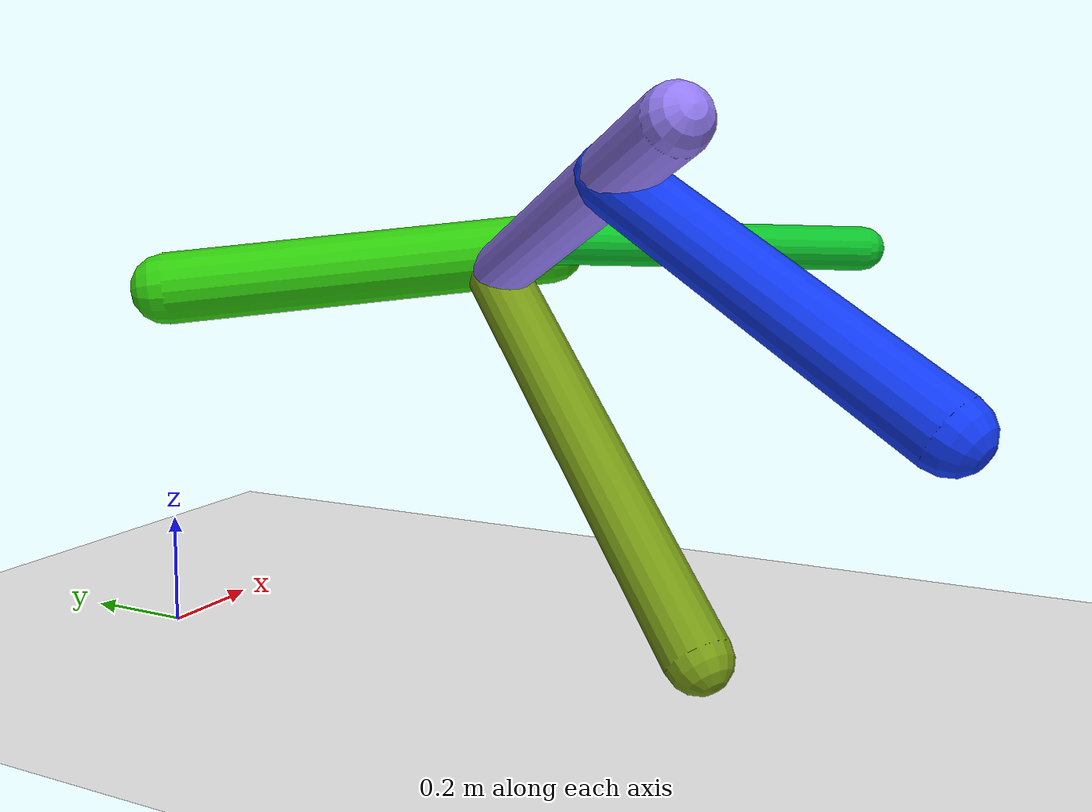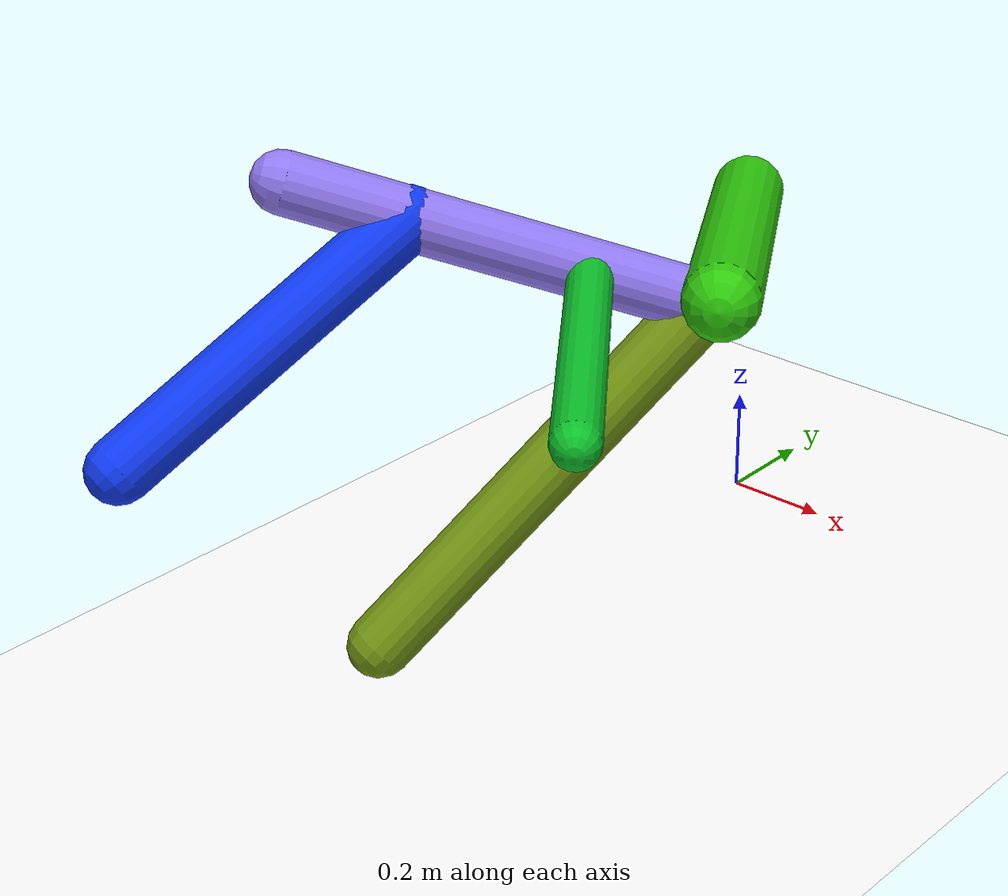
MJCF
<mujoco model="morphology">
  <option timestep="0.01"/>
  <default>
    <default class="/"/>
    <default class="0/"/>
    <default class="0/1/"/>
    <default class="0/1/2/"/>
    <default class="0/1/2/3/"/>
    <default class="0/1/2/4/"/>
  </default>
  <asset>
    <texture name="texplane" type="2d" builtin="checker" rgb1="0.10000000000000001 0.20000000000000001 0.29999999999999999" rgb2="0.20000000000000001 0.29999999999999999 0.40000000000000002" width="300" height="300"/>
    <material name="MatPlane" class="/" texture="texplane" texrepeat="20 20" specular="1" shininess="1" reflectance="0.5"/>
  </asset>
  <worldbody>
    <light name="//unnamed_light_0" class="/" directional="true" pos="0 0 1.5" dir="0 0 -1.3" cutoff="100" exponent="1" diffuse="1 1 1" specular="0.10000000000000001 0.10000000000000001 0.10000000000000001"/>
    <geom name="ground" class="/" type="plane" size="15 15 0.5" material="MatPlane" rgba="1 1 1 1"/>
    <site name="body" class="/" size="9.9999999999999995e-07 9.9999999999999995e-07 9.9999999999999995e-07" pos="0 0 0.63740447759628294"/>
    <body pos="0 0 0.63740447759628294" name="0/">
      <freejoint name="0/"/>
      <geom name="0/geom" class="0/" type="capsule" contype="1" conaffinity="1" condim="3" size="0.066940035385578384" rgba="0.18295940248163589 0.78629385805449015 0.04518887498872981 1" friction="0.59999999999999998 0.10000000000000001 0.10000000000000001" fromto="0 0 0 0.38911594732202492 -0.60193040110446483 0.072690725287960611"/>
      <site name="0/end0" class="0/" size="0.0050000000000000001" pos="0.38911594732202492 -0.60193040110446483 0.072690725287960611"/>
      <site name="0/attach1" class="0/" size="9.9999999999999995e-07 9.9999999999999995e-07 9.9999999999999995e-07" pos="0.32415600286603885 -0.50144270407940328 0.060555562209528777"/>
      <body pos="0.32415600286603885 -0.50144270407940328 0.060555562209528777" name="0/1/">
        <geom name="0/1/geom" class="0/1/" type="capsule" contype="1" conaffinity="1" condim="3" size="0.056833393159811216" rgba="0.45765088950171162 0.59437888705679753 0.075772124908265348 1" friction="0.59999999999999998 0.10000000000000001 0.10000000000000001" fromto="0 0 0 -0.31927811688564089 -0.52689643511817352 -0.59796001138442878"/>
        <site name="0/1/end1" class="0/1/" size="0.0050000000000000001" pos="-0.31927811688564089 -0.52689643511817352 -0.59796001138442878"/>
        <site name="0/1/attach2" class="0/1/" size="9.9999999999999995e-07 9.9999999999999995e-07 9.9999999999999995e-07" pos="-0.018821005924840033 -0.03105982027164176 -0.035248920367175626"/>
        <body pos="-0.018821005924840033 -0.03105982027164176 -0.035248920367175626" name="0/1/2/">
          <joint name="0/1/2/joint/" class="0/1/" type="hinge" axis="-1.1102230246251565e-16 -0.75028297488036522 0.66111682598816812" limited="true" range="-69.943050882198065 69.943050882198065"/>
          <geom name="0/1/2/geom" class="0/1/2/" type="capsule" contype="1" conaffinity="1" condim="3" size="0.053663761552241257" rgba="0.57061766330046837 0.47878538322192654 0.95011221425135772 1" friction="0.59999999999999998 0.10000000000000001 0.10000000000000001" fromto="0 0 0 -0.47835869207426979 -0.50005319227406531 0.2366482780507404"/>
          <site name="0/1/2/end2" class="0/1/2/" size="0.0050000000000000001" pos="-0.47835869207426979 -0.50005319227406531 0.2366482780507404"/>
          <site name="0/1/2/attach3" class="0/1/2/" size="9.9999999999999995e-07 9.9999999999999995e-07 9.9999999999999995e-07" pos="-0.34015348881826163 -0.35558011334374046 0.16827694099743776"/>
          <body pos="-0.34015348881826163 -0.35558011334374046 0.16827694099743776" name="0/1/2/3/">
            <joint name="0/1/2/3/joint/" class="0/1/2/" type="hinge" axis="0.75643378070781442 -0.59120820823325604 0.27978704387749148" limited="true" range="-60.759061335397398 60.759061335397398"/>
            <geom name="0/1/2/3/geom" class="0/1/2/3/" type="capsule" contype="1" conaffinity="1" condim="3" size="0.055662850751110257" rgba="0.061152742468714716 0.22802673533128692 0.94823918525899809 1" friction="0.59999999999999998 0.10000000000000001 0.10000000000000001" fromto="0 0 0 -0.1544519049338543 -0.50489109339782789 -0.31659072734898924"/>
            <site name="0/1/2/3/end3" class="0/1/2/3/" size="0.0050000000000000001" pos="-0.1544519049338543 -0.50489109339782789 -0.31659072734898924"/>
          </body>
          <site name="0/1/2/attach4" class="0/1/2/" size="9.9999999999999995e-07 9.9999999999999995e-07 9.9999999999999995e-07" pos="-0.13407827534725927 -0.14015898678723815 0.066329709296921585"/>
          <body pos="-0.13407827534725927 -0.14015898678723815 0.066329709296921585" name="0/1/2/4/">
            <joint name="0/1/2/4/joint/" class="0/1/2/" type="hinge" axis="0.75643378070781442 -0.59120820823325604 0.27978704387749148" limited="true" range="-48.518903931756881 48.518903931756881"/>
            <geom name="0/1/2/4/geom" class="0/1/2/4/" type="capsule" contype="1" conaffinity="1" condim="3" size="0.039247731975921026" rgba="0.045801742172864923 0.75544132584735191 0.16596425806382553 1" friction="0.59999999999999998 0.10000000000000001 0.10000000000000001" fromto="0 0 0 0.37436261976652063 -0.47527045575302324 -0.016159482445258"/>
            <site name="0/1/2/4/end4" class="0/1/2/4/" size="0.0050000000000000001" pos="0.37436261976652063 -0.47527045575302324 -0.016159482445258"/>
          </body>
        </body>
      </body>
      <camera name="0/iso" class="0/" mode="trackcom" pos="-2.2999999999999998 -2.2999999999999998 1" xyaxes="0.45000000000000001 -0.45000000000000001 0 0.29999999999999999 0.14999999999999999 0.93999999999999995"/>
    </body>
  </worldbody>
  <actuator>
    <motor name="0/1/2/motor" class="0/1/2/" ctrllimited="true" ctrlrange="-1 1" gear="75" joint="0/1/2/joint/"/>
    <motor name="0/1/2/3/motor" class="0/1/2/3/" ctrllimited="true" ctrlrange="-1 1" gear="53" joint="0/1/2/3/joint/"/>
    <motor name="0/1/2/4/motor" class="0/1/2/4/" ctrllimited="true" ctrlrange="-1 1" gear="51" joint="0/1/2/4/joint/"/>
  </actuator>
  <sensor>
    <subtreelinvel name="velocity" body="0/"/>
  </sensor>
</mujoco>
